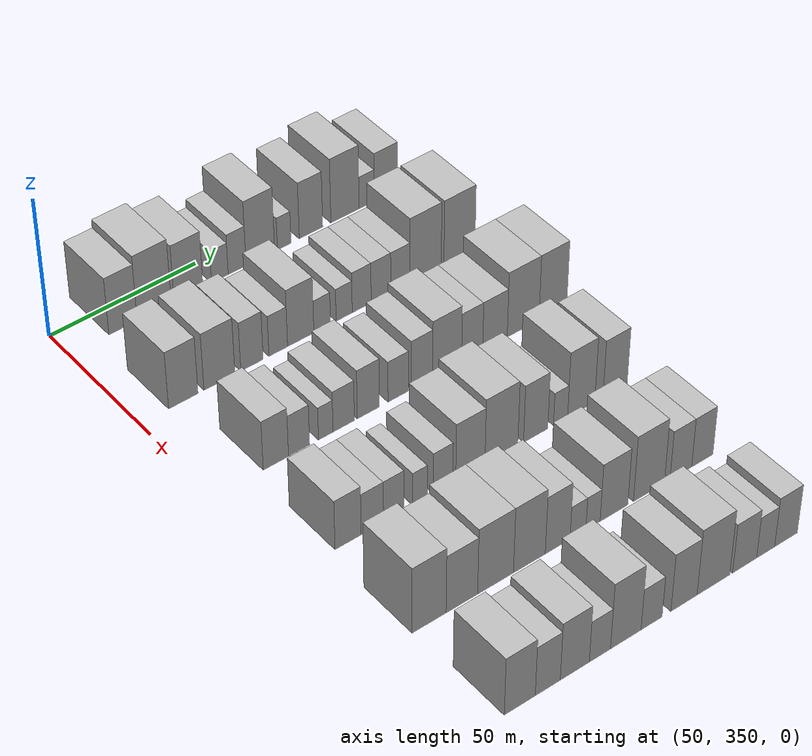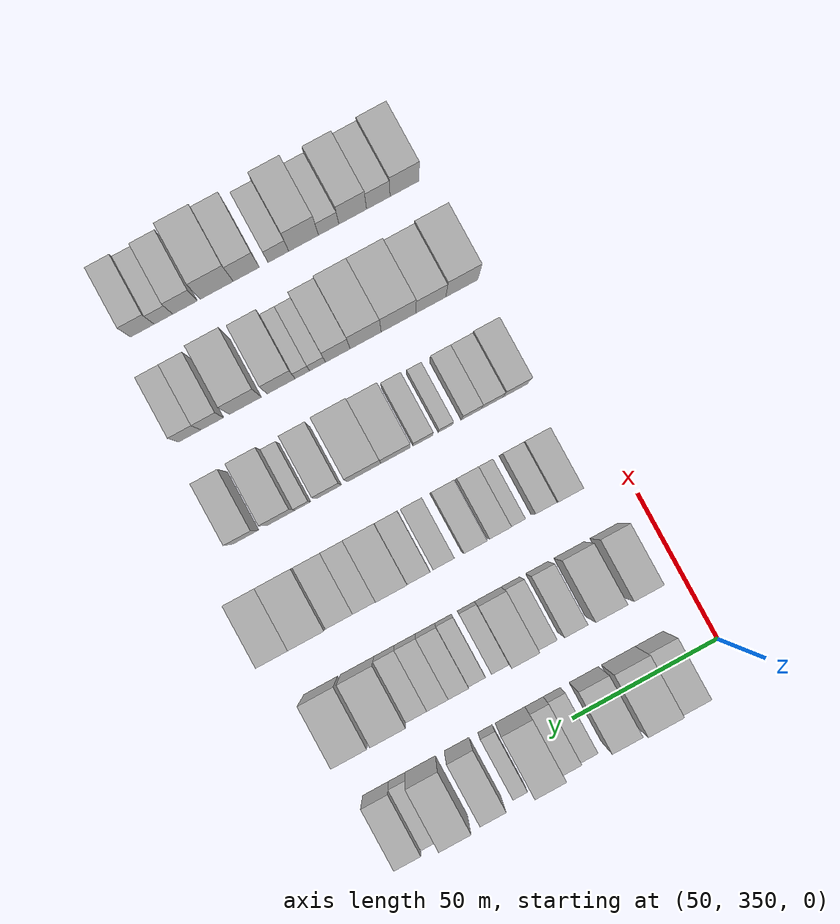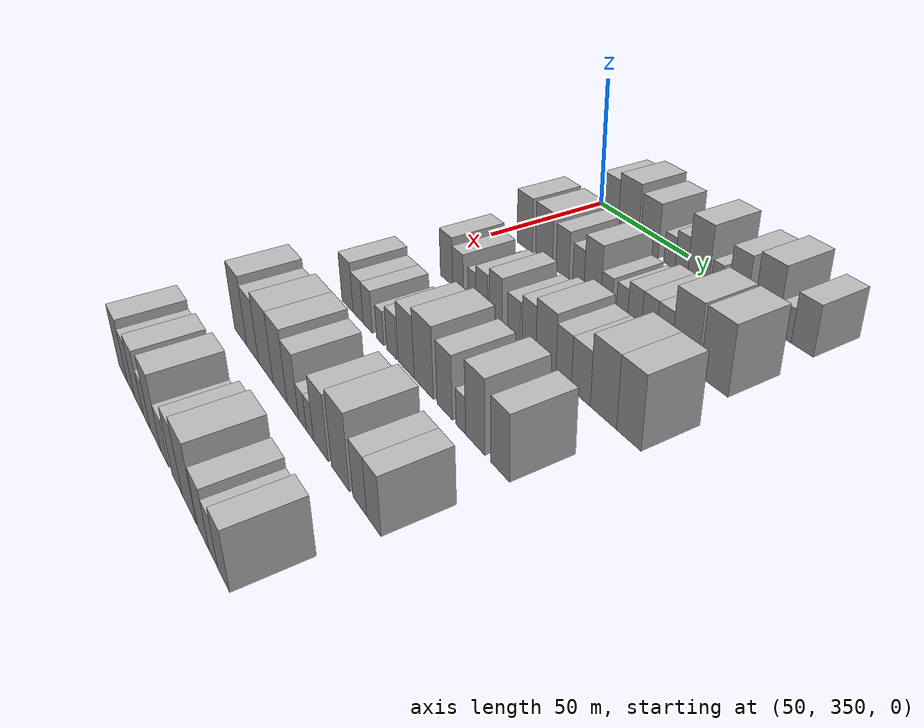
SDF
<sdf version="1.6">
 <world name="default">
  <model name="building_103">
   <static>1</static>
   <pose>50.0000 368.1562 0 0.000000 0.000000 0.000000</pose>
   <link name="link">
    <pose>0 0 10.50 0 0 0</pose>
    <collision name="collision"><geometry><box><size>20.0000 9.5901 21.0000</size></box></geometry></collision>
    <visual name="visual">
     <cast_shadows>0</cast_shadows>
     <geometry><box><size>20.0000 9.5901 21.0000</size></box></geometry>
     <material>
      <script>
       <uri>model://HANNAS_wall/materials/scripts</uri>
       <uri>model://HANNAS_wall/materials/textures</uri>
       <name>vrc/HANNAS_wall</name>
      </script>
     </material>
    </visual>
   </link>
  </model>
  <model name="building_104">
   <static>1</static>
   <pose>50.0000 378.7930 0 0.000000 0.000000 0.000000</pose>
   <link name="link">
    <pose>0 0 12.00 0 0 0</pose>
    <collision name="collision"><geometry><box><size>20.0000 11.6835 24.0000</size></box></geometry></collision>
    <visual name="visual">
     <cast_shadows>0</cast_shadows>
     <geometry><box><size>20.0000 11.6835 24.0000</size></box></geometry>
     <material>
      <script>
       <uri>model://HANNAS_wall/materials/scripts</uri>
       <uri>model://HANNAS_wall/materials/textures</uri>
       <name>vrc/HANNAS_wall</name>
      </script>
     </material>
    </visual>
   </link>
  </model>
  <model name="building_105">
   <static>1</static>
   <pose>50.0000 390.6527 0 0.000000 0.000000 0.000000</pose>
   <link name="link">
    <pose>0 0 10.50 0 0 0</pose>
    <collision name="collision"><geometry><box><size>20.0000 10.0359 21.0000</size></box></geometry></collision>
    <visual name="visual">
     <cast_shadows>0</cast_shadows>
     <geometry><box><size>20.0000 10.0359 21.0000</size></box></geometry>
     <material>
      <script>
       <uri>model://HANNAS_wall/materials/scripts</uri>
       <uri>model://HANNAS_wall/materials/textures</uri>
       <name>vrc/HANNAS_wall</name>
      </script>
     </material>
    </visual>
   </link>
  </model>
  <model name="building_106">
   <static>1</static>
   <pose>50.0000 401.6032 0 0.000000 0.000000 0.000000</pose>
   <link name="link">
    <pose>0 0 6.00 0 0 0</pose>
    <collision name="collision"><geometry><box><size>20.0000 5.8651 12.0000</size></box></geometry></collision>
    <visual name="visual">
     <cast_shadows>0</cast_shadows>
     <geometry><box><size>20.0000 5.8651 12.0000</size></box></geometry>
     <material>
      <script>
       <uri>model://HANNAS_wall/materials/scripts</uri>
       <uri>model://HANNAS_wall/materials/textures</uri>
       <name>vrc/HANNAS_wall</name>
      </script>
     </material>
    </visual>
   </link>
  </model>
  <model name="building_107">
   <static>1</static>
   <pose>50.0000 407.6950 0 0.000000 0.000000 0.000000</pose>
   <link name="link">
    <pose>0 0 7.50 0 0 0</pose>
    <collision name="collision"><geometry><box><size>20.0000 6.3185 15.0000</size></box></geometry></collision>
    <visual name="visual">
     <cast_shadows>0</cast_shadows>
     <geometry><box><size>20.0000 6.3185 15.0000</size></box></geometry>
     <material>
      <script>
       <uri>model://HANNAS_wall/materials/scripts</uri>
       <uri>model://HANNAS_wall/materials/textures</uri>
       <name>vrc/HANNAS_wall</name>
      </script>
     </material>
    </visual>
   </link>
  </model>
  <model name="building_108">
   <static>1</static>
   <pose>50.0000 415.9632 0 0.000000 0.000000 0.000000</pose>
   <link name="link">
    <pose>0 0 12.00 0 0 0</pose>
    <collision name="collision"><geometry><box><size>20.0000 10.2180 24.0000</size></box></geometry></collision>
    <visual name="visual">
     <cast_shadows>0</cast_shadows>
     <geometry><box><size>20.0000 10.2180 24.0000</size></box></geometry>
     <material>
      <script>
       <uri>model://HANNAS_wall/materials/scripts</uri>
       <uri>model://HANNAS_wall/materials/textures</uri>
       <name>vrc/HANNAS_wall</name>
      </script>
     </material>
    </visual>
   </link>
  </model>
  <model name="building_109">
   <static>1</static>
   <pose>50.0000 424.5240 0 0.000000 0.000000 0.000000</pose>
   <link name="link">
    <pose>0 0 6.00 0 0 0</pose>
    <collision name="collision"><geometry><box><size>20.0000 4.9036 12.0000</size></box></geometry></collision>
    <visual name="visual">
     <cast_shadows>0</cast_shadows>
     <geometry><box><size>20.0000 4.9036 12.0000</size></box></geometry>
     <material>
      <script>
       <uri>model://HANNAS_wall/materials/scripts</uri>
       <uri>model://HANNAS_wall/materials/textures</uri>
       <name>vrc/HANNAS_wall</name>
      </script>
     </material>
    </visual>
   </link>
  </model>
  <model name="building_110">
   <static>1</static>
   <pose>50.0000 434.2414 0 0.000000 0.000000 0.000000</pose>
   <link name="link">
    <pose>0 0 10.50 0 0 0</pose>
    <collision name="collision"><geometry><box><size>20.0000 8.5311 21.0000</size></box></geometry></collision>
    <visual name="visual">
     <cast_shadows>0</cast_shadows>
     <geometry><box><size>20.0000 8.5311 21.0000</size></box></geometry>
     <material>
      <script>
       <uri>model://HANNAS_wall/materials/scripts</uri>
       <uri>model://HANNAS_wall/materials/textures</uri>
       <name>vrc/HANNAS_wall</name>
      </script>
     </material>
    </visual>
   </link>
  </model>
  <model name="building_111">
   <static>1</static>
   <pose>50.0000 446.7216 0 0.000000 0.000000 0.000000</pose>
   <link name="link">
    <pose>0 0 12.00 0 0 0</pose>
    <collision name="collision"><geometry><box><size>20.0000 10.4294 24.0000</size></box></geometry></collision>
    <visual name="visual">
     <cast_shadows>0</cast_shadows>
     <geometry><box><size>20.0000 10.4294 24.0000</size></box></geometry>
     <material>
      <script>
       <uri>model://HANNAS_wall/materials/scripts</uri>
       <uri>model://HANNAS_wall/materials/textures</uri>
       <name>vrc/HANNAS_wall</name>
      </script>
     </material>
    </visual>
   </link>
  </model>
  <model name="building_112">
   <static>1</static>
   <pose>50.0000 454.7608 0 0.000000 0.000000 0.000000</pose>
   <link name="link">
    <pose>0 0 6.00 0 0 0</pose>
    <collision name="collision"><geometry><box><size>20.0000 5.6491 12.0000</size></box></geometry></collision>
    <visual name="visual">
     <cast_shadows>0</cast_shadows>
     <geometry><box><size>20.0000 5.6491 12.0000</size></box></geometry>
     <material>
      <script>
       <uri>model://HANNAS_wall/materials/scripts</uri>
       <uri>model://HANNAS_wall/materials/textures</uri>
       <name>vrc/HANNAS_wall</name>
      </script>
     </material>
    </visual>
   </link>
  </model>
  <model name="building_113">
   <static>1</static>
   <pose>50.0000 461.9882 0 0.000000 0.000000 0.000000</pose>
   <link name="link">
    <pose>0 0 9.00 0 0 0</pose>
    <collision name="collision"><geometry><box><size>20.0000 8.8057 18.0000</size></box></geometry></collision>
    <visual name="visual">
     <cast_shadows>0</cast_shadows>
     <geometry><box><size>20.0000 8.8057 18.0000</size></box></geometry>
     <material>
      <script>
       <uri>model://HANNAS_wall/materials/scripts</uri>
       <uri>model://HANNAS_wall/materials/textures</uri>
       <name>vrc/HANNAS_wall</name>
      </script>
     </material>
    </visual>
   </link>
  </model>
  <model name="building_232">
   <static>1</static>
   <pose>85.0000 364.4153 0 0.000000 0.000000 0.000000</pose>
   <link name="link">
    <pose>0 0 10.50 0 0 0</pose>
    <collision name="collision"><geometry><box><size>20.0000 9.8080 21.0000</size></box></geometry></collision>
    <visual name="visual">
     <cast_shadows>0</cast_shadows>
     <geometry><box><size>20.0000 9.8080 21.0000</size></box></geometry>
     <material>
      <script>
       <uri>model://HANNAS_wall/materials/scripts</uri>
       <uri>model://HANNAS_wall/materials/textures</uri>
       <name>vrc/HANNAS_wall</name>
      </script>
     </material>
    </visual>
   </link>
  </model>
  <model name="building_233">
   <static>1</static>
   <pose>85.0000 376.5569 0 0.000000 0.000000 0.000000</pose>
   <link name="link">
    <pose>0 0 10.50 0 0 0</pose>
    <collision name="collision"><geometry><box><size>20.0000 10.4753 21.0000</size></box></geometry></collision>
    <visual name="visual">
     <cast_shadows>0</cast_shadows>
     <geometry><box><size>20.0000 10.4753 21.0000</size></box></geometry>
     <material>
      <script>
       <uri>model://HANNAS_wall/materials/scripts</uri>
       <uri>model://HANNAS_wall/materials/textures</uri>
       <name>vrc/HANNAS_wall</name>
      </script>
     </material>
    </visual>
   </link>
  </model>
  <model name="building_234">
   <static>1</static>
   <pose>85.0000 387.6304 0 0.000000 0.000000 0.000000</pose>
   <link name="link">
    <pose>0 0 9.00 0 0 0</pose>
    <collision name="collision"><geometry><box><size>20.0000 7.6715 18.0000</size></box></geometry></collision>
    <visual name="visual">
     <cast_shadows>0</cast_shadows>
     <geometry><box><size>20.0000 7.6715 18.0000</size></box></geometry>
     <material>
      <script>
       <uri>model://HANNAS_wall/materials/scripts</uri>
       <uri>model://HANNAS_wall/materials/textures</uri>
       <name>vrc/HANNAS_wall</name>
      </script>
     </material>
    </visual>
   </link>
  </model>
  <model name="building_235">
   <static>1</static>
   <pose>85.0000 396.6884 0 0.000000 0.000000 0.000000</pose>
   <link name="link">
    <pose>0 0 7.50 0 0 0</pose>
    <collision name="collision"><geometry><box><size>20.0000 6.4446 15.0000</size></box></geometry></collision>
    <visual name="visual">
     <cast_shadows>0</cast_shadows>
     <geometry><box><size>20.0000 6.4446 15.0000</size></box></geometry>
     <material>
      <script>
       <uri>model://HANNAS_wall/materials/scripts</uri>
       <uri>model://HANNAS_wall/materials/textures</uri>
       <name>vrc/HANNAS_wall</name>
      </script>
     </material>
    </visual>
   </link>
  </model>
  <model name="building_236">
   <static>1</static>
   <pose>85.0000 404.5023 0 0.000000 0.000000 0.000000</pose>
   <link name="link">
    <pose>0 0 10.50 0 0 0</pose>
    <collision name="collision"><geometry><box><size>20.0000 9.1832 21.0000</size></box></geometry></collision>
    <visual name="visual">
     <cast_shadows>0</cast_shadows>
     <geometry><box><size>20.0000 9.1832 21.0000</size></box></geometry>
     <material>
      <script>
       <uri>model://HANNAS_wall/materials/scripts</uri>
       <uri>model://HANNAS_wall/materials/textures</uri>
       <name>vrc/HANNAS_wall</name>
      </script>
     </material>
    </visual>
   </link>
  </model>
  <model name="building_237">
   <static>1</static>
   <pose>85.0000 412.0164 0 0.000000 0.000000 0.000000</pose>
   <link name="link">
    <pose>0 0 6.00 0 0 0</pose>
    <collision name="collision"><geometry><box><size>20.0000 5.8450 12.0000</size></box></geometry></collision>
    <visual name="visual">
     <cast_shadows>0</cast_shadows>
     <geometry><box><size>20.0000 5.8450 12.0000</size></box></geometry>
     <material>
      <script>
       <uri>model://HANNAS_wall/materials/scripts</uri>
       <uri>model://HANNAS_wall/materials/textures</uri>
       <name>vrc/HANNAS_wall</name>
      </script>
     </material>
    </visual>
   </link>
  </model>
  <model name="building_238">
   <static>1</static>
   <pose>85.0000 419.8044 0 0.000000 0.000000 0.000000</pose>
   <link name="link">
    <pose>0 0 6.00 0 0 0</pose>
    <collision name="collision"><geometry><box><size>20.0000 5.7311 12.0000</size></box></geometry></collision>
    <visual name="visual">
     <cast_shadows>0</cast_shadows>
     <geometry><box><size>20.0000 5.7311 12.0000</size></box></geometry>
     <material>
      <script>
       <uri>model://HANNAS_wall/materials/scripts</uri>
       <uri>model://HANNAS_wall/materials/textures</uri>
       <name>vrc/HANNAS_wall</name>
      </script>
     </material>
    </visual>
   </link>
  </model>
  <model name="building_239">
   <static>1</static>
   <pose>85.0000 426.0638 0 0.000000 0.000000 0.000000</pose>
   <link name="link">
    <pose>0 0 7.50 0 0 0</pose>
    <collision name="collision"><geometry><box><size>20.0000 6.7876 15.0000</size></box></geometry></collision>
    <visual name="visual">
     <cast_shadows>0</cast_shadows>
     <geometry><box><size>20.0000 6.7876 15.0000</size></box></geometry>
     <material>
      <script>
       <uri>model://HANNAS_wall/materials/scripts</uri>
       <uri>model://HANNAS_wall/materials/textures</uri>
       <name>vrc/HANNAS_wall</name>
      </script>
     </material>
    </visual>
   </link>
  </model>
  <model name="building_240">
   <static>1</static>
   <pose>85.0000 432.9928 0 0.000000 0.000000 0.000000</pose>
   <link name="link">
    <pose>0 0 7.50 0 0 0</pose>
    <collision name="collision"><geometry><box><size>20.0000 7.0705 15.0000</size></box></geometry></collision>
    <visual name="visual">
     <cast_shadows>0</cast_shadows>
     <geometry><box><size>20.0000 7.0705 15.0000</size></box></geometry>
     <material>
      <script>
       <uri>model://HANNAS_wall/materials/scripts</uri>
       <uri>model://HANNAS_wall/materials/textures</uri>
       <name>vrc/HANNAS_wall</name>
      </script>
     </material>
    </visual>
   </link>
  </model>
  <model name="building_241">
   <static>1</static>
   <pose>85.0000 440.0112 0 0.000000 0.000000 0.000000</pose>
   <link name="link">
    <pose>0 0 7.50 0 0 0</pose>
    <collision name="collision"><geometry><box><size>20.0000 6.9663 15.0000</size></box></geometry></collision>
    <visual name="visual">
     <cast_shadows>0</cast_shadows>
     <geometry><box><size>20.0000 6.9663 15.0000</size></box></geometry>
     <material>
      <script>
       <uri>model://HANNAS_wall/materials/scripts</uri>
       <uri>model://HANNAS_wall/materials/textures</uri>
       <name>vrc/HANNAS_wall</name>
      </script>
     </material>
    </visual>
   </link>
  </model>
  <model name="building_242">
   <static>1</static>
   <pose>85.0000 449.2240 0 0.000000 0.000000 0.000000</pose>
   <link name="link">
    <pose>0 0 12.00 0 0 0</pose>
    <collision name="collision"><geometry><box><size>20.0000 11.4593 24.0000</size></box></geometry></collision>
    <visual name="visual">
     <cast_shadows>0</cast_shadows>
     <geometry><box><size>20.0000 11.4593 24.0000</size></box></geometry>
     <material>
      <script>
       <uri>model://HANNAS_wall/materials/scripts</uri>
       <uri>model://HANNAS_wall/materials/textures</uri>
       <name>vrc/HANNAS_wall</name>
      </script>
     </material>
    </visual>
   </link>
  </model>
  <model name="building_243">
   <static>1</static>
   <pose>85.0000 461.7285 0 0.000000 0.000000 0.000000</pose>
   <link name="link">
    <pose>0 0 12.00 0 0 0</pose>
    <collision name="collision"><geometry><box><size>20.0000 11.5496 24.0000</size></box></geometry></collision>
    <visual name="visual">
     <cast_shadows>0</cast_shadows>
     <geometry><box><size>20.0000 11.5496 24.0000</size></box></geometry>
     <material>
      <script>
       <uri>model://HANNAS_wall/materials/scripts</uri>
       <uri>model://HANNAS_wall/materials/textures</uri>
       <name>vrc/HANNAS_wall</name>
      </script>
     </material>
    </visual>
   </link>
  </model>
  <model name="building_356">
   <static>1</static>
   <pose>120.0000 370.1997 0 0.000000 0.000000 0.000000</pose>
   <link name="link">
    <pose>0 0 9.00 0 0 0</pose>
    <collision name="collision"><geometry><box><size>20.0000 8.3890 18.0000</size></box></geometry></collision>
    <visual name="visual">
     <cast_shadows>0</cast_shadows>
     <geometry><box><size>20.0000 8.3890 18.0000</size></box></geometry>
     <material>
      <script>
       <uri>model://HANNAS_wall/materials/scripts</uri>
       <uri>model://HANNAS_wall/materials/textures</uri>
       <name>vrc/HANNAS_wall</name>
      </script>
     </material>
    </visual>
   </link>
  </model>
  <model name="building_357">
   <static>1</static>
   <pose>120.0000 377.9332 0 0.000000 0.000000 0.000000</pose>
   <link name="link">
    <pose>0 0 7.50 0 0 0</pose>
    <collision name="collision"><geometry><box><size>20.0000 7.0779 15.0000</size></box></geometry></collision>
    <visual name="visual">
     <cast_shadows>0</cast_shadows>
     <geometry><box><size>20.0000 7.0779 15.0000</size></box></geometry>
     <material>
      <script>
       <uri>model://HANNAS_wall/materials/scripts</uri>
       <uri>model://HANNAS_wall/materials/textures</uri>
       <name>vrc/HANNAS_wall</name>
      </script>
     </material>
    </visual>
   </link>
  </model>
  <model name="building_358">
   <static>1</static>
   <pose>120.0000 386.9366 0 0.000000 0.000000 0.000000</pose>
   <link name="link">
    <pose>0 0 6.00 0 0 0</pose>
    <collision name="collision"><geometry><box><size>20.0000 4.9290 12.0000</size></box></geometry></collision>
    <visual name="visual">
     <cast_shadows>0</cast_shadows>
     <geometry><box><size>20.0000 4.9290 12.0000</size></box></geometry>
     <material>
      <script>
       <uri>model://HANNAS_wall/materials/scripts</uri>
       <uri>model://HANNAS_wall/materials/textures</uri>
       <name>vrc/HANNAS_wall</name>
      </script>
     </material>
    </visual>
   </link>
  </model>
  <model name="building_359">
   <static>1</static>
   <pose>120.0000 393.0352 0 0.000000 0.000000 0.000000</pose>
   <link name="link">
    <pose>0 0 7.50 0 0 0</pose>
    <collision name="collision"><geometry><box><size>20.0000 7.2682 15.0000</size></box></geometry></collision>
    <visual name="visual">
     <cast_shadows>0</cast_shadows>
     <geometry><box><size>20.0000 7.2682 15.0000</size></box></geometry>
     <material>
      <script>
       <uri>model://HANNAS_wall/materials/scripts</uri>
       <uri>model://HANNAS_wall/materials/textures</uri>
       <name>vrc/HANNAS_wall</name>
      </script>
     </material>
    </visual>
   </link>
  </model>
  <model name="building_360">
   <static>1</static>
   <pose>120.0000 401.4822 0 0.000000 0.000000 0.000000</pose>
   <link name="link">
    <pose>0 0 9.00 0 0 0</pose>
    <collision name="collision"><geometry><box><size>20.0000 7.6257 18.0000</size></box></geometry></collision>
    <visual name="visual">
     <cast_shadows>0</cast_shadows>
     <geometry><box><size>20.0000 7.6257 18.0000</size></box></geometry>
     <material>
      <script>
       <uri>model://HANNAS_wall/materials/scripts</uri>
       <uri>model://HANNAS_wall/materials/textures</uri>
       <name>vrc/HANNAS_wall</name>
      </script>
     </material>
    </visual>
   </link>
  </model>
  <model name="building_361">
   <static>1</static>
   <pose>120.0000 411.8411 0 0.000000 0.000000 0.000000</pose>
   <link name="link">
    <pose>0 0 7.50 0 0 0</pose>
    <collision name="collision"><geometry><box><size>20.0000 7.0920 15.0000</size></box></geometry></collision>
    <visual name="visual">
     <cast_shadows>0</cast_shadows>
     <geometry><box><size>20.0000 7.0920 15.0000</size></box></geometry>
     <material>
      <script>
       <uri>model://HANNAS_wall/materials/scripts</uri>
       <uri>model://HANNAS_wall/materials/textures</uri>
       <name>vrc/HANNAS_wall</name>
      </script>
     </material>
    </visual>
   </link>
  </model>
  <model name="building_362">
   <static>1</static>
   <pose>120.0000 420.1564 0 0.000000 0.000000 0.000000</pose>
   <link name="link">
    <pose>0 0 9.00 0 0 0</pose>
    <collision name="collision"><geometry><box><size>20.0000 7.5386 18.0000</size></box></geometry></collision>
    <visual name="visual">
     <cast_shadows>0</cast_shadows>
     <geometry><box><size>20.0000 7.5386 18.0000</size></box></geometry>
     <material>
      <script>
       <uri>model://HANNAS_wall/materials/scripts</uri>
       <uri>model://HANNAS_wall/materials/textures</uri>
       <name>vrc/HANNAS_wall</name>
      </script>
     </material>
    </visual>
   </link>
  </model>
  <model name="building_363">
   <static>1</static>
   <pose>120.0000 429.0549 0 0.000000 0.000000 0.000000</pose>
   <link name="link">
    <pose>0 0 10.50 0 0 0</pose>
    <collision name="collision"><geometry><box><size>20.0000 10.2585 21.0000</size></box></geometry></collision>
    <visual name="visual">
     <cast_shadows>0</cast_shadows>
     <geometry><box><size>20.0000 10.2585 21.0000</size></box></geometry>
     <material>
      <script>
       <uri>model://HANNAS_wall/materials/scripts</uri>
       <uri>model://HANNAS_wall/materials/textures</uri>
       <name>vrc/HANNAS_wall</name>
      </script>
     </material>
    </visual>
   </link>
  </model>
  <model name="building_364">
   <static>1</static>
   <pose>120.0000 437.9762 0 0.000000 0.000000 0.000000</pose>
   <link name="link">
    <pose>0 0 9.00 0 0 0</pose>
    <collision name="collision"><geometry><box><size>20.0000 7.5841 18.0000</size></box></geometry></collision>
    <visual name="visual">
     <cast_shadows>0</cast_shadows>
     <geometry><box><size>20.0000 7.5841 18.0000</size></box></geometry>
     <material>
      <script>
       <uri>model://HANNAS_wall/materials/scripts</uri>
       <uri>model://HANNAS_wall/materials/textures</uri>
       <name>vrc/HANNAS_wall</name>
      </script>
     </material>
    </visual>
   </link>
  </model>
  <model name="building_365">
   <static>1</static>
   <pose>120.0000 446.2279 0 0.000000 0.000000 0.000000</pose>
   <link name="link">
    <pose>0 0 9.00 0 0 0</pose>
    <collision name="collision"><geometry><box><size>20.0000 8.9193 18.0000</size></box></geometry></collision>
    <visual name="visual">
     <cast_shadows>0</cast_shadows>
     <geometry><box><size>20.0000 8.9193 18.0000</size></box></geometry>
     <material>
      <script>
       <uri>model://HANNAS_wall/materials/scripts</uri>
       <uri>model://HANNAS_wall/materials/textures</uri>
       <name>vrc/HANNAS_wall</name>
      </script>
     </material>
    </visual>
   </link>
  </model>
  <model name="building_366">
   <static>1</static>
   <pose>120.0000 456.5091 0 0.000000 0.000000 0.000000</pose>
   <link name="link">
    <pose>0 0 12.00 0 0 0</pose>
    <collision name="collision"><geometry><box><size>20.0000 11.6431 24.0000</size></box></geometry></collision>
    <visual name="visual">
     <cast_shadows>0</cast_shadows>
     <geometry><box><size>20.0000 11.6431 24.0000</size></box></geometry>
     <material>
      <script>
       <uri>model://HANNAS_wall/materials/scripts</uri>
       <uri>model://HANNAS_wall/materials/textures</uri>
       <name>vrc/HANNAS_wall</name>
      </script>
     </material>
    </visual>
   </link>
  </model>
  <model name="building_367">
   <static>1</static>
   <pose>120.0000 467.4903 0 0.000000 0.000000 0.000000</pose>
   <link name="link">
    <pose>0 0 12.00 0 0 0</pose>
    <collision name="collision"><geometry><box><size>20.0000 10.3194 24.0000</size></box></geometry></collision>
    <visual name="visual">
     <cast_shadows>0</cast_shadows>
     <geometry><box><size>20.0000 10.3194 24.0000</size></box></geometry>
     <material>
      <script>
       <uri>model://HANNAS_wall/materials/scripts</uri>
       <uri>model://HANNAS_wall/materials/textures</uri>
       <name>vrc/HANNAS_wall</name>
      </script>
     </material>
    </visual>
   </link>
  </model>
  <model name="building_484">
   <static>1</static>
   <pose>155.0000 367.8696 0 0.000000 0.000000 0.000000</pose>
   <link name="link">
    <pose>0 0 9.00 0 0 0</pose>
    <collision name="collision"><geometry><box><size>20.0000 8.5868 18.0000</size></box></geometry></collision>
    <visual name="visual">
     <cast_shadows>0</cast_shadows>
     <geometry><box><size>20.0000 8.5868 18.0000</size></box></geometry>
     <material>
      <script>
       <uri>model://HANNAS_wall/materials/scripts</uri>
       <uri>model://HANNAS_wall/materials/textures</uri>
       <name>vrc/HANNAS_wall</name>
      </script>
     </material>
    </visual>
   </link>
  </model>
  <model name="building_485">
   <static>1</static>
   <pose>155.0000 375.8604 0 0.000000 0.000000 0.000000</pose>
   <link name="link">
    <pose>0 0 7.50 0 0 0</pose>
    <collision name="collision"><geometry><box><size>20.0000 7.3949 15.0000</size></box></geometry></collision>
    <visual name="visual">
     <cast_shadows>0</cast_shadows>
     <geometry><box><size>20.0000 7.3949 15.0000</size></box></geometry>
     <material>
      <script>
       <uri>model://HANNAS_wall/materials/scripts</uri>
       <uri>model://HANNAS_wall/materials/textures</uri>
       <name>vrc/HANNAS_wall</name>
      </script>
     </material>
    </visual>
   </link>
  </model>
  <model name="building_486">
   <static>1</static>
   <pose>155.0000 382.9405 0 0.000000 0.000000 0.000000</pose>
   <link name="link">
    <pose>0 0 7.50 0 0 0</pose>
    <collision name="collision"><geometry><box><size>20.0000 6.7652 15.0000</size></box></geometry></collision>
    <visual name="visual">
     <cast_shadows>0</cast_shadows>
     <geometry><box><size>20.0000 6.7652 15.0000</size></box></geometry>
     <material>
      <script>
       <uri>model://HANNAS_wall/materials/scripts</uri>
       <uri>model://HANNAS_wall/materials/textures</uri>
       <name>vrc/HANNAS_wall</name>
      </script>
     </material>
    </visual>
   </link>
  </model>
  <model name="building_487">
   <static>1</static>
   <pose>155.0000 391.7717 0 0.000000 0.000000 0.000000</pose>
   <link name="link">
    <pose>0 0 6.00 0 0 0</pose>
    <collision name="collision"><geometry><box><size>20.0000 4.8972 12.0000</size></box></geometry></collision>
    <visual name="visual">
     <cast_shadows>0</cast_shadows>
     <geometry><box><size>20.0000 4.8972 12.0000</size></box></geometry>
     <material>
      <script>
       <uri>model://HANNAS_wall/materials/scripts</uri>
       <uri>model://HANNAS_wall/materials/textures</uri>
       <name>vrc/HANNAS_wall</name>
      </script>
     </material>
    </visual>
   </link>
  </model>
  <model name="building_488">
   <static>1</static>
   <pose>155.0000 399.5532 0 0.000000 0.000000 0.000000</pose>
   <link name="link">
    <pose>0 0 7.50 0 0 0</pose>
    <collision name="collision"><geometry><box><size>20.0000 6.6658 15.0000</size></box></geometry></collision>
    <visual name="visual">
     <cast_shadows>0</cast_shadows>
     <geometry><box><size>20.0000 6.6658 15.0000</size></box></geometry>
     <material>
      <script>
       <uri>model://HANNAS_wall/materials/scripts</uri>
       <uri>model://HANNAS_wall/materials/textures</uri>
       <name>vrc/HANNAS_wall</name>
      </script>
     </material>
    </visual>
   </link>
  </model>
  <model name="building_489">
   <static>1</static>
   <pose>155.0000 408.9054 0 0.000000 0.000000 0.000000</pose>
   <link name="link">
    <pose>0 0 10.50 0 0 0</pose>
    <collision name="collision"><geometry><box><size>20.0000 10.0385 21.0000</size></box></geometry></collision>
    <visual name="visual">
     <cast_shadows>0</cast_shadows>
     <geometry><box><size>20.0000 10.0385 21.0000</size></box></geometry>
     <material>
      <script>
       <uri>model://HANNAS_wall/materials/scripts</uri>
       <uri>model://HANNAS_wall/materials/textures</uri>
       <name>vrc/HANNAS_wall</name>
      </script>
     </material>
    </visual>
   </link>
  </model>
  <model name="building_490">
   <static>1</static>
   <pose>155.0000 419.6691 0 0.000000 0.000000 0.000000</pose>
   <link name="link">
    <pose>0 0 12.00 0 0 0</pose>
    <collision name="collision"><geometry><box><size>20.0000 11.4889 24.0000</size></box></geometry></collision>
    <visual name="visual">
     <cast_shadows>0</cast_shadows>
     <geometry><box><size>20.0000 11.4889 24.0000</size></box></geometry>
     <material>
      <script>
       <uri>model://HANNAS_wall/materials/scripts</uri>
       <uri>model://HANNAS_wall/materials/textures</uri>
       <name>vrc/HANNAS_wall</name>
      </script>
     </material>
    </visual>
   </link>
  </model>
  <model name="building_491">
   <static>1</static>
   <pose>155.0000 431.7068 0 0.000000 0.000000 0.000000</pose>
   <link name="link">
    <pose>0 0 10.50 0 0 0</pose>
    <collision name="collision"><geometry><box><size>20.0000 8.5865 21.0000</size></box></geometry></collision>
    <visual name="visual">
     <cast_shadows>0</cast_shadows>
     <geometry><box><size>20.0000 8.5865 21.0000</size></box></geometry>
     <material>
      <script>
       <uri>model://HANNAS_wall/materials/scripts</uri>
       <uri>model://HANNAS_wall/materials/textures</uri>
       <name>vrc/HANNAS_wall</name>
      </script>
     </material>
    </visual>
   </link>
  </model>
  <model name="building_492">
   <static>1</static>
   <pose>155.0000 440.5345 0 0.000000 0.000000 0.000000</pose>
   <link name="link">
    <pose>0 0 6.00 0 0 0</pose>
    <collision name="collision"><geometry><box><size>20.0000 5.0690 12.0000</size></box></geometry></collision>
    <visual name="visual">
     <cast_shadows>0</cast_shadows>
     <geometry><box><size>20.0000 5.0690 12.0000</size></box></geometry>
     <material>
      <script>
       <uri>model://HANNAS_wall/materials/scripts</uri>
       <uri>model://HANNAS_wall/materials/textures</uri>
       <name>vrc/HANNAS_wall</name>
      </script>
     </material>
    </visual>
   </link>
  </model>
  <model name="building_493">
   <static>1</static>
   <pose>155.0000 447.9543 0 0.000000 0.000000 0.000000</pose>
   <link name="link">
    <pose>0 0 12.00 0 0 0</pose>
    <collision name="collision"><geometry><box><size>20.0000 9.7707 24.0000</size></box></geometry></collision>
    <visual name="visual">
     <cast_shadows>0</cast_shadows>
     <geometry><box><size>20.0000 9.7707 24.0000</size></box></geometry>
     <material>
      <script>
       <uri>model://HANNAS_wall/materials/scripts</uri>
       <uri>model://HANNAS_wall/materials/textures</uri>
       <name>vrc/HANNAS_wall</name>
      </script>
     </material>
    </visual>
   </link>
  </model>
  <model name="building_494">
   <static>1</static>
   <pose>155.0000 460.2522 0 0.000000 0.000000 0.000000</pose>
   <link name="link">
    <pose>0 0 10.50 0 0 0</pose>
    <collision name="collision"><geometry><box><size>20.0000 8.8251 21.0000</size></box></geometry></collision>
    <visual name="visual">
     <cast_shadows>0</cast_shadows>
     <geometry><box><size>20.0000 8.8251 21.0000</size></box></geometry>
     <material>
      <script>
       <uri>model://HANNAS_wall/materials/scripts</uri>
       <uri>model://HANNAS_wall/materials/textures</uri>
       <name>vrc/HANNAS_wall</name>
      </script>
     </material>
    </visual>
   </link>
  </model>
  <model name="building_605">
   <static>1</static>
   <pose>190.0000 367.0261 0 0.000000 0.000000 0.000000</pose>
   <link name="link">
    <pose>0 0 12.00 0 0 0</pose>
    <collision name="collision"><geometry><box><size>20.0000 11.0136 24.0000</size></box></geometry></collision>
    <visual name="visual">
     <cast_shadows>0</cast_shadows>
     <geometry><box><size>20.0000 11.0136 24.0000</size></box></geometry>
     <material>
      <script>
       <uri>model://HANNAS_wall/materials/scripts</uri>
       <uri>model://HANNAS_wall/materials/textures</uri>
       <name>vrc/HANNAS_wall</name>
      </script>
     </material>
    </visual>
   </link>
  </model>
  <model name="building_606">
   <static>1</static>
   <pose>190.0000 377.7062 0 0.000000 0.000000 0.000000</pose>
   <link name="link">
    <pose>0 0 10.50 0 0 0</pose>
    <collision name="collision"><geometry><box><size>20.0000 10.3465 21.0000</size></box></geometry></collision>
    <visual name="visual">
     <cast_shadows>0</cast_shadows>
     <geometry><box><size>20.0000 10.3465 21.0000</size></box></geometry>
     <material>
      <script>
       <uri>model://HANNAS_wall/materials/scripts</uri>
       <uri>model://HANNAS_wall/materials/textures</uri>
       <name>vrc/HANNAS_wall</name>
      </script>
     </material>
    </visual>
   </link>
  </model>
  <model name="building_607">
   <static>1</static>
   <pose>190.0000 388.8459 0 0.000000 0.000000 0.000000</pose>
   <link name="link">
    <pose>0 0 12.00 0 0 0</pose>
    <collision name="collision"><geometry><box><size>20.0000 11.9329 24.0000</size></box></geometry></collision>
    <visual name="visual">
     <cast_shadows>0</cast_shadows>
     <geometry><box><size>20.0000 11.9329 24.0000</size></box></geometry>
     <material>
      <script>
       <uri>model://HANNAS_wall/materials/scripts</uri>
       <uri>model://HANNAS_wall/materials/textures</uri>
       <name>vrc/HANNAS_wall</name>
      </script>
     </material>
    </visual>
   </link>
  </model>
  <model name="building_608">
   <static>1</static>
   <pose>190.0000 400.1788 0 0.000000 0.000000 0.000000</pose>
   <link name="link">
    <pose>0 0 12.00 0 0 0</pose>
    <collision name="collision"><geometry><box><size>20.0000 10.7330 24.0000</size></box></geometry></collision>
    <visual name="visual">
     <cast_shadows>0</cast_shadows>
     <geometry><box><size>20.0000 10.7330 24.0000</size></box></geometry>
     <material>
      <script>
       <uri>model://HANNAS_wall/materials/scripts</uri>
       <uri>model://HANNAS_wall/materials/textures</uri>
       <name>vrc/HANNAS_wall</name>
      </script>
     </material>
    </visual>
   </link>
  </model>
  <model name="building_609">
   <static>1</static>
   <pose>190.0000 409.7742 0 0.000000 0.000000 0.000000</pose>
   <link name="link">
    <pose>0 0 10.50 0 0 0</pose>
    <collision name="collision"><geometry><box><size>20.0000 8.4578 21.0000</size></box></geometry></collision>
    <visual name="visual">
     <cast_shadows>0</cast_shadows>
     <geometry><box><size>20.0000 8.4578 21.0000</size></box></geometry>
     <material>
      <script>
       <uri>model://HANNAS_wall/materials/scripts</uri>
       <uri>model://HANNAS_wall/materials/textures</uri>
       <name>vrc/HANNAS_wall</name>
      </script>
     </material>
    </visual>
   </link>
  </model>
  <model name="building_610">
   <static>1</static>
   <pose>190.0000 416.7203 0 0.000000 0.000000 0.000000</pose>
   <link name="link">
    <pose>0 0 6.00 0 0 0</pose>
    <collision name="collision"><geometry><box><size>20.0000 5.4343 12.0000</size></box></geometry></collision>
    <visual name="visual">
     <cast_shadows>0</cast_shadows>
     <geometry><box><size>20.0000 5.4343 12.0000</size></box></geometry>
     <material>
      <script>
       <uri>model://HANNAS_wall/materials/scripts</uri>
       <uri>model://HANNAS_wall/materials/textures</uri>
       <name>vrc/HANNAS_wall</name>
      </script>
     </material>
    </visual>
   </link>
  </model>
  <model name="building_611">
   <static>1</static>
   <pose>190.0000 421.9066 0 0.000000 0.000000 0.000000</pose>
   <link name="link">
    <pose>0 0 6.00 0 0 0</pose>
    <collision name="collision"><geometry><box><size>20.0000 4.9384 12.0000</size></box></geometry></collision>
    <visual name="visual">
     <cast_shadows>0</cast_shadows>
     <geometry><box><size>20.0000 4.9384 12.0000</size></box></geometry>
     <material>
      <script>
       <uri>model://HANNAS_wall/materials/scripts</uri>
       <uri>model://HANNAS_wall/materials/textures</uri>
       <name>vrc/HANNAS_wall</name>
      </script>
     </material>
    </visual>
   </link>
  </model>
  <model name="building_612">
   <static>1</static>
   <pose>190.0000 429.2100 0 0.000000 0.000000 0.000000</pose>
   <link name="link">
    <pose>0 0 10.50 0 0 0</pose>
    <collision name="collision"><geometry><box><size>20.0000 9.6685 21.0000</size></box></geometry></collision>
    <visual name="visual">
     <cast_shadows>0</cast_shadows>
     <geometry><box><size>20.0000 9.6685 21.0000</size></box></geometry>
     <material>
      <script>
       <uri>model://HANNAS_wall/materials/scripts</uri>
       <uri>model://HANNAS_wall/materials/textures</uri>
       <name>vrc/HANNAS_wall</name>
      </script>
     </material>
    </visual>
   </link>
  </model>
  <model name="building_613">
   <static>1</static>
   <pose>190.0000 441.5322 0 0.000000 0.000000 0.000000</pose>
   <link name="link">
    <pose>0 0 12.00 0 0 0</pose>
    <collision name="collision"><geometry><box><size>20.0000 10.9759 24.0000</size></box></geometry></collision>
    <visual name="visual">
     <cast_shadows>0</cast_shadows>
     <geometry><box><size>20.0000 10.9759 24.0000</size></box></geometry>
     <material>
      <script>
       <uri>model://HANNAS_wall/materials/scripts</uri>
       <uri>model://HANNAS_wall/materials/textures</uri>
       <name>vrc/HANNAS_wall</name>
      </script>
     </material>
    </visual>
   </link>
  </model>
  <model name="building_614">
   <static>1</static>
   <pose>190.0000 452.9185 0 0.000000 0.000000 0.000000</pose>
   <link name="link">
    <pose>0 0 9.00 0 0 0</pose>
    <collision name="collision"><geometry><box><size>20.0000 7.7966 18.0000</size></box></geometry></collision>
    <visual name="visual">
     <cast_shadows>0</cast_shadows>
     <geometry><box><size>20.0000 7.7966 18.0000</size></box></geometry>
     <material>
      <script>
       <uri>model://HANNAS_wall/materials/scripts</uri>
       <uri>model://HANNAS_wall/materials/textures</uri>
       <name>vrc/HANNAS_wall</name>
      </script>
     </material>
    </visual>
   </link>
  </model>
  <model name="building_615">
   <static>1</static>
   <pose>190.0000 460.6675 0 0.000000 0.000000 0.000000</pose>
   <link name="link">
    <pose>0 0 9.00 0 0 0</pose>
    <collision name="collision"><geometry><box><size>20.0000 7.7014 18.0000</size></box></geometry></collision>
    <visual name="visual">
     <cast_shadows>0</cast_shadows>
     <geometry><box><size>20.0000 7.7014 18.0000</size></box></geometry>
     <material>
      <script>
       <uri>model://HANNAS_wall/materials/scripts</uri>
       <uri>model://HANNAS_wall/materials/textures</uri>
       <name>vrc/HANNAS_wall</name>
      </script>
     </material>
    </visual>
   </link>
  </model>
  <model name="building_729">
   <static>1</static>
   <pose>225.0000 367.7615 0 0.000000 0.000000 0.000000</pose>
   <link name="link">
    <pose>0 0 10.50 0 0 0</pose>
    <collision name="collision"><geometry><box><size>20.0000 9.9483 21.0000</size></box></geometry></collision>
    <visual name="visual">
     <cast_shadows>0</cast_shadows>
     <geometry><box><size>20.0000 9.9483 21.0000</size></box></geometry>
     <material>
      <script>
       <uri>model://HANNAS_wall/materials/scripts</uri>
       <uri>model://HANNAS_wall/materials/textures</uri>
       <name>vrc/HANNAS_wall</name>
      </script>
     </material>
    </visual>
   </link>
  </model>
  <model name="building_730">
   <static>1</static>
   <pose>225.0000 376.7947 0 0.000000 0.000000 0.000000</pose>
   <link name="link">
    <pose>0 0 9.00 0 0 0</pose>
    <collision name="collision"><geometry><box><size>20.0000 8.1182 18.0000</size></box></geometry></collision>
    <visual name="visual">
     <cast_shadows>0</cast_shadows>
     <geometry><box><size>20.0000 8.1182 18.0000</size></box></geometry>
     <material>
      <script>
       <uri>model://HANNAS_wall/materials/scripts</uri>
       <uri>model://HANNAS_wall/materials/textures</uri>
       <name>vrc/HANNAS_wall</name>
      </script>
     </material>
    </visual>
   </link>
  </model>
  <model name="building_731">
   <static>1</static>
   <pose>225.0000 385.6290 0 0.000000 0.000000 0.000000</pose>
   <link name="link">
    <pose>0 0 10.50 0 0 0</pose>
    <collision name="collision"><geometry><box><size>20.0000 9.5503 21.0000</size></box></geometry></collision>
    <visual name="visual">
     <cast_shadows>0</cast_shadows>
     <geometry><box><size>20.0000 9.5503 21.0000</size></box></geometry>
     <material>
      <script>
       <uri>model://HANNAS_wall/materials/scripts</uri>
       <uri>model://HANNAS_wall/materials/textures</uri>
       <name>vrc/HANNAS_wall</name>
      </script>
     </material>
    </visual>
   </link>
  </model>
  <model name="building_732">
   <static>1</static>
   <pose>225.0000 393.9206 0 0.000000 0.000000 0.000000</pose>
   <link name="link">
    <pose>0 0 7.50 0 0 0</pose>
    <collision name="collision"><geometry><box><size>20.0000 7.0329 15.0000</size></box></geometry></collision>
    <visual name="visual">
     <cast_shadows>0</cast_shadows>
     <geometry><box><size>20.0000 7.0329 15.0000</size></box></geometry>
     <material>
      <script>
       <uri>model://HANNAS_wall/materials/scripts</uri>
       <uri>model://HANNAS_wall/materials/textures</uri>
       <name>vrc/HANNAS_wall</name>
      </script>
     </material>
    </visual>
   </link>
  </model>
  <model name="building_733">
   <static>1</static>
   <pose>225.0000 402.5634 0 0.000000 0.000000 0.000000</pose>
   <link name="link">
    <pose>0 0 12.00 0 0 0</pose>
    <collision name="collision"><geometry><box><size>20.0000 10.2528 24.0000</size></box></geometry></collision>
    <visual name="visual">
     <cast_shadows>0</cast_shadows>
     <geometry><box><size>20.0000 10.2528 24.0000</size></box></geometry>
     <material>
      <script>
       <uri>model://HANNAS_wall/materials/scripts</uri>
       <uri>model://HANNAS_wall/materials/textures</uri>
       <name>vrc/HANNAS_wall</name>
      </script>
     </material>
    </visual>
   </link>
  </model>
  <model name="building_734">
   <static>1</static>
   <pose>225.0000 411.2621 0 0.000000 0.000000 0.000000</pose>
   <link name="link">
    <pose>0 0 7.50 0 0 0</pose>
    <collision name="collision"><geometry><box><size>20.0000 7.1445 15.0000</size></box></geometry></collision>
    <visual name="visual">
     <cast_shadows>0</cast_shadows>
     <geometry><box><size>20.0000 7.1445 15.0000</size></box></geometry>
     <material>
      <script>
       <uri>model://HANNAS_wall/materials/scripts</uri>
       <uri>model://HANNAS_wall/materials/textures</uri>
       <name>vrc/HANNAS_wall</name>
      </script>
     </material>
    </visual>
   </link>
  </model>
  <model name="building_735">
   <static>1</static>
   <pose>225.0000 422.3281 0 0.000000 0.000000 0.000000</pose>
   <link name="link">
    <pose>0 0 10.50 0 0 0</pose>
    <collision name="collision"><geometry><box><size>20.0000 8.9876 21.0000</size></box></geometry></collision>
    <visual name="visual">
     <cast_shadows>0</cast_shadows>
     <geometry><box><size>20.0000 8.9876 21.0000</size></box></geometry>
     <material>
      <script>
       <uri>model://HANNAS_wall/materials/scripts</uri>
       <uri>model://HANNAS_wall/materials/textures</uri>
       <name>vrc/HANNAS_wall</name>
      </script>
     </material>
    </visual>
   </link>
  </model>
  <model name="building_736">
   <static>1</static>
   <pose>225.0000 432.5066 0 0.000000 0.000000 0.000000</pose>
   <link name="link">
    <pose>0 0 12.00 0 0 0</pose>
    <collision name="collision"><geometry><box><size>20.0000 11.3694 24.0000</size></box></geometry></collision>
    <visual name="visual">
     <cast_shadows>0</cast_shadows>
     <geometry><box><size>20.0000 11.3694 24.0000</size></box></geometry>
     <material>
      <script>
       <uri>model://HANNAS_wall/materials/scripts</uri>
       <uri>model://HANNAS_wall/materials/textures</uri>
       <name>vrc/HANNAS_wall</name>
      </script>
     </material>
    </visual>
   </link>
  </model>
  <model name="building_737">
   <static>1</static>
   <pose>225.0000 443.4249 0 0.000000 0.000000 0.000000</pose>
   <link name="link">
    <pose>0 0 9.00 0 0 0</pose>
    <collision name="collision"><geometry><box><size>20.0000 8.4672 18.0000</size></box></geometry></collision>
    <visual name="visual">
     <cast_shadows>0</cast_shadows>
     <geometry><box><size>20.0000 8.4672 18.0000</size></box></geometry>
     <material>
      <script>
       <uri>model://HANNAS_wall/materials/scripts</uri>
       <uri>model://HANNAS_wall/materials/textures</uri>
       <name>vrc/HANNAS_wall</name>
      </script>
     </material>
    </visual>
   </link>
  </model>
  <model name="building_738">
   <static>1</static>
   <pose>225.0000 450.8685 0 0.000000 0.000000 0.000000</pose>
   <link name="link">
    <pose>0 0 7.50 0 0 0</pose>
    <collision name="collision"><geometry><box><size>20.0000 6.4200 15.0000</size></box></geometry></collision>
    <visual name="visual">
     <cast_shadows>0</cast_shadows>
     <geometry><box><size>20.0000 6.4200 15.0000</size></box></geometry>
     <material>
      <script>
       <uri>model://HANNAS_wall/materials/scripts</uri>
       <uri>model://HANNAS_wall/materials/textures</uri>
       <name>vrc/HANNAS_wall</name>
      </script>
     </material>
    </visual>
   </link>
  </model>
  <model name="building_739">
   <static>1</static>
   <pose>225.0000 458.1436 0 0.000000 0.000000 0.000000</pose>
   <link name="link">
    <pose>0 0 9.00 0 0 0</pose>
    <collision name="collision"><geometry><box><size>20.0000 8.1301 18.0000</size></box></geometry></collision>
    <visual name="visual">
     <cast_shadows>0</cast_shadows>
     <geometry><box><size>20.0000 8.1301 18.0000</size></box></geometry>
     <material>
      <script>
       <uri>model://HANNAS_wall/materials/scripts</uri>
       <uri>model://HANNAS_wall/materials/textures</uri>
       <name>vrc/HANNAS_wall</name>
      </script>
     </material>
    </visual>
   </link>
  </model>
 </world>
</sdf>
